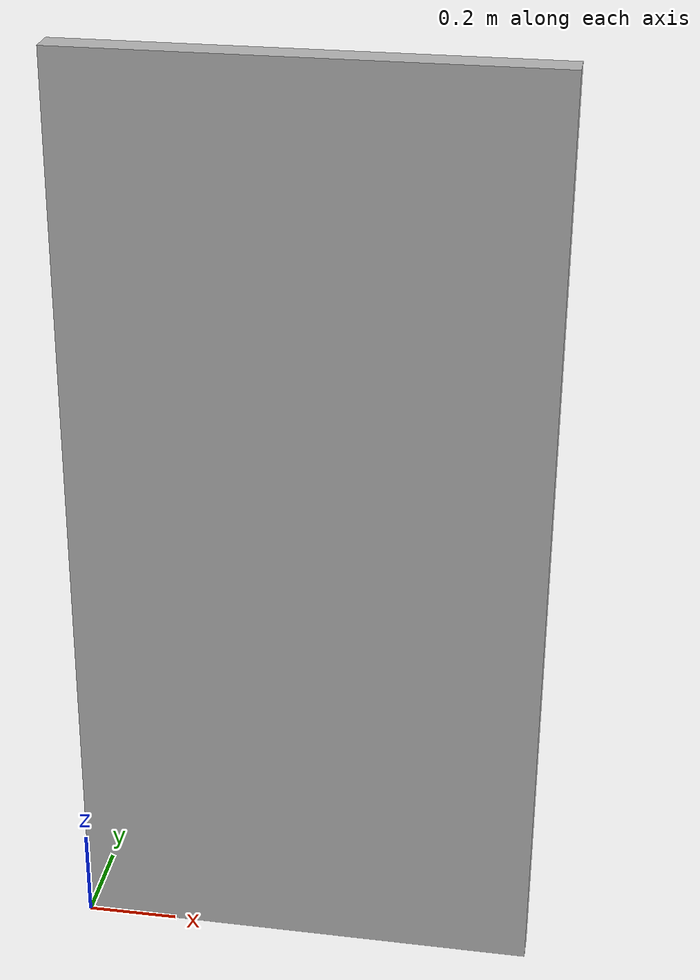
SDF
<?xml version="1.0"?>
<sdf version="1.6">
  <model name="robotics_testlabs/door">
    <link name="1_link">
      <collision name="1_col">
        <geometry>
          <box>
            <size>1.0 0.06 2.0</size>
          </box>
        </geometry>
      </collision>
      <visual name="1_vis">
        <geometry>
          <box>
            <size>1.0 0.06 2.0</size>
          </box>
        </geometry>
      </visual>
      <pose>0.5 0.03 1.0 0 0 0</pose>
    </link>
    <static>true</static>
  </model>
</sdf>
